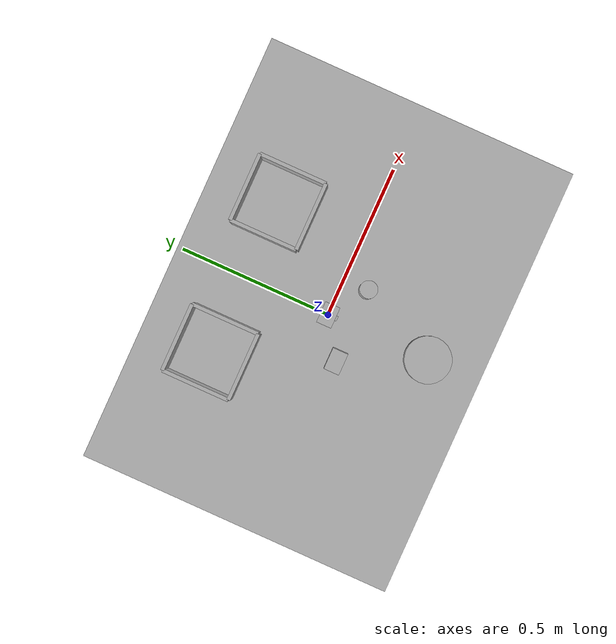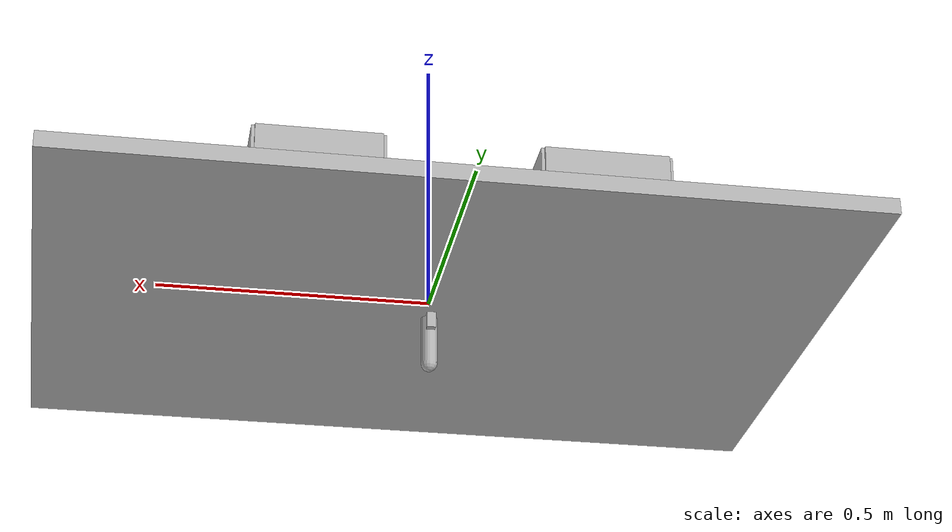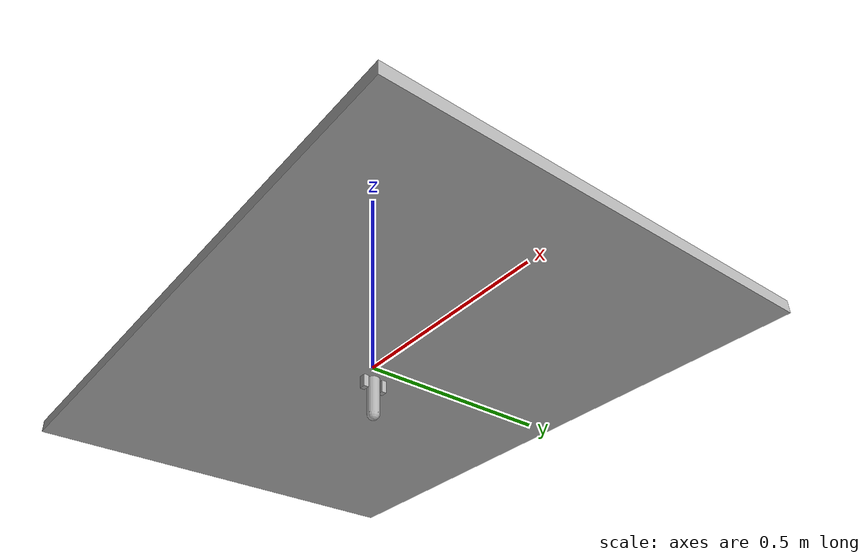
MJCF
<mujoco model="basket_sorting_panda_cartesian_standin">
  <compiler angle="radian" inertiafromgeom="true"/>
  <option timestep="0.004" gravity="0 0 -9.81"/>

  <default>
    <joint damping="1.0" armature="0.01" limited="true"/>
    <geom condim="3" friction="1.0 0.05 0.005" rgba="0.7 0.7 0.7 1"/>
    <position kp="300"/>
  </default>

  <asset>
    <material name="table_mat" rgba="0.72 0.68 0.58 1"/>
    <material name="panda_white" rgba="0.86 0.86 0.82 1"/>
    <material name="panda_dark" rgba="0.12 0.13 0.14 1"/>
    <material name="cracker_mat" rgba="0.78 0.24 0.16 1"/>
    <material name="mustard_mat" rgba="0.95 0.76 0.12 1"/>
    <material name="left_basket_mat" rgba="0.20 0.47 0.78 0.35"/>
    <material name="right_basket_mat" rgba="0.24 0.62 0.35 0.35"/>
  </asset>

  <worldbody>
    <light name="key" pos="0 -0.6 1.5" dir="0 0 -1" diffuse="0.8 0.8 0.8"/>
    <camera name="overhead" pos="0 0 1.45" xyaxes="1 0 0 0 1 0" fovy="42"/>
    <geom name="table" type="box" pos="0 0 -0.015" size="0.72 0.52 0.015" material="table_mat"/>

    <body name="panda_base" pos="0 0 0">
      <geom name="base_geom" type="cylinder" pos="0 -0.34 0.015" size="0.075 0.03" material="panda_dark"/>
      <body name="panda_x_axis">
        <inertial pos="0 0 0" mass="0.1" diaginertia="0.001 0.001 0.001"/>
        <joint name="panda_joint1" type="slide" axis="1 0 0" range="-0.6 0.6"/>
        <body name="panda_y_axis">
          <inertial pos="0 0 0" mass="0.1" diaginertia="0.001 0.001 0.001"/>
          <joint name="panda_joint2" type="slide" axis="0 1 0" range="-0.45 0.45"/>
          <body name="panda_z_axis">
            <inertial pos="0 0 0" mass="0.2" diaginertia="0.002 0.002 0.002"/>
            <joint name="panda_joint3" type="slide" axis="0 0 1" range="0.02 0.45"/>
            <joint name="panda_joint4" type="hinge" axis="0 0 1" range="-3.0718 -0.0698"/>
            <joint name="panda_joint5" type="hinge" axis="1 0 0" range="-2.8973 2.8973"/>
            <joint name="panda_joint6" type="hinge" axis="0 1 0" range="-0.0175 3.7525"/>
            <joint name="panda_joint7" type="hinge" axis="1 0 0" range="-2.8973 2.8973"/>
            <geom name="vertical_column" type="capsule" fromto="0 0 0 0 0 -0.12" size="0.015" material="panda_white" contype="0" conaffinity="0"/>
            <body name="panda_hand" pos="0 0 0">
              <site name="panda_hand_tcp" pos="0 0 0" size="0.012" rgba="1 0 0 1"/>
              <geom name="hand_geom" type="box" pos="0 0 0" size="0.035 0.025 0.018" material="panda_dark" contype="0" conaffinity="0"/>
              <body name="left_finger" pos="0 0.025 -0.025">
                <joint name="panda_finger_joint1" type="slide" axis="0 1 0" range="0 0.04"/>
                <geom type="box" size="0.008 0.006 0.035" material="panda_dark" contype="0" conaffinity="0"/>
              </body>
              <body name="right_finger" pos="0 -0.025 -0.025">
                <joint name="panda_finger_joint2" type="slide" axis="0 -1 0" range="0 0.04"/>
                <geom type="box" size="0.008 0.006 0.035" material="panda_dark" contype="0" conaffinity="0"/>
              </body>
            </body>
          </body>
        </body>
      </body>
    </body>

    <body name="cracker_box" pos="-0.12 -0.08 0.04">
      <freejoint name="cracker_box_freejoint"/>
      <geom name="cracker_box_geom" type="box" size="0.035 0.025 0.055" material="cracker_mat" mass="0.12"/>
    </body>

    <body name="mustard_bottle" pos="0.12 -0.08 0.055">
      <freejoint name="mustard_bottle_freejoint"/>
      <geom name="mustard_bottle_geom" type="cylinder" size="0.028 0.075" material="mustard_mat" mass="0.15"/>
    </body>

    <body name="left_basket" pos="-0.25 0.28 0.035">
      <geom name="left_basket_floor" type="box" size="0.11 0.11 0.008" material="left_basket_mat" contype="0" conaffinity="0"/>
      <geom name="left_basket_back" type="box" pos="0 0.11 0.04" size="0.11 0.006 0.045" material="left_basket_mat"/>
      <geom name="left_basket_front" type="box" pos="0 -0.11 0.04" size="0.11 0.006 0.045" material="left_basket_mat"/>
      <geom name="left_basket_left" type="box" pos="-0.11 0 0.04" size="0.006 0.11 0.045" material="left_basket_mat"/>
      <geom name="left_basket_right" type="box" pos="0.11 0 0.04" size="0.006 0.11 0.045" material="left_basket_mat"/>
    </body>

    <body name="right_basket" pos="0.25 0.28 0.035">
      <geom name="right_basket_floor" type="box" size="0.11 0.11 0.008" material="right_basket_mat" contype="0" conaffinity="0"/>
      <geom name="right_basket_back" type="box" pos="0 0.11 0.04" size="0.11 0.006 0.045" material="right_basket_mat"/>
      <geom name="right_basket_front" type="box" pos="0 -0.11 0.04" size="0.11 0.006 0.045" material="right_basket_mat"/>
      <geom name="right_basket_left" type="box" pos="-0.11 0 0.04" size="0.006 0.11 0.045" material="right_basket_mat"/>
      <geom name="right_basket_right" type="box" pos="0.11 0 0.04" size="0.006 0.11 0.045" material="right_basket_mat"/>
    </body>
  </worldbody>

  <actuator>
    <position name="panda_joint1" joint="panda_joint1" kp="300" ctrlrange="-0.6 0.6"/>
    <position name="panda_joint2" joint="panda_joint2" kp="300" ctrlrange="-0.45 0.45"/>
    <position name="panda_joint3" joint="panda_joint3" kp="300" ctrlrange="0.02 0.45"/>
    <position name="panda_joint4" joint="panda_joint4" kp="80" ctrlrange="-3.0718 -0.0698"/>
    <position name="panda_joint5" joint="panda_joint5" kp="80" ctrlrange="-2.8973 2.8973"/>
    <position name="panda_joint6" joint="panda_joint6" kp="80" ctrlrange="-0.0175 3.7525"/>
    <position name="panda_joint7" joint="panda_joint7" kp="80" ctrlrange="-2.8973 2.8973"/>
    <position name="panda_finger_joint1" joint="panda_finger_joint1" kp="60" ctrlrange="0 0.04"/>
    <position name="panda_finger_joint2" joint="panda_finger_joint2" kp="60" ctrlrange="0 0.04"/>
  </actuator>
</mujoco>
